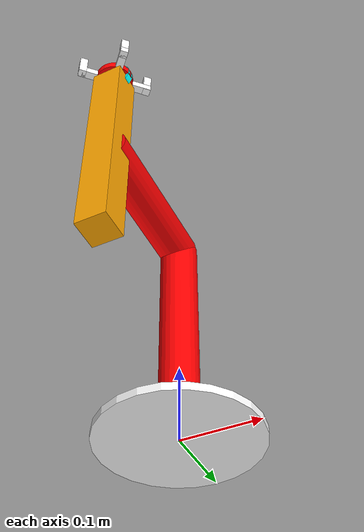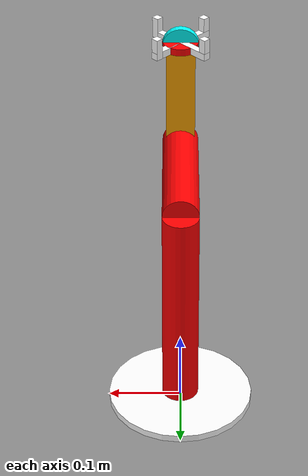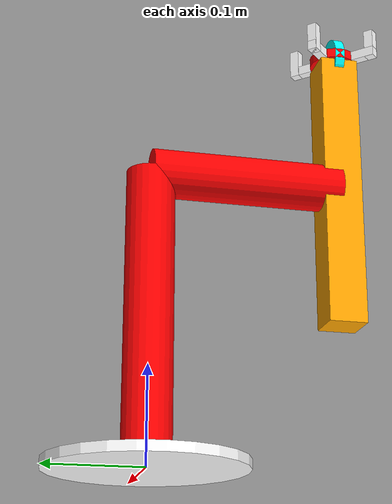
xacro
<?xml version="1.0"?>

<robot name="my_robot_arm" xmlns:xacro="http://www.ros.org/wiki/xacro">

    <xacro:include filename="$(find my_robot_arm)/urdf/links_joints.xacro"/>

    <xacro:property name="h1" value=".3"/>
    <xacro:property name="d2" value=".2"/>
    <xacro:property name="d3" value=".3"/>

    <xacro:m_link_cylinder
                name="base_link"
	        origin_rpy="0 0 0"
                origin_xyz="0 0 .0025"
	        radius="0.1"
                length=".01"
                material="white"/>

    <xacro:m_joint_r
                name="base_link__link_01"
                axis_xyz="0 0 1"
                origin_rpy="0 0 0" origin_xyz="0 0 0"
                min="-3.14" max="3.14"
                parent="base_link"
                child="link_01"/>

    <xacro:m_link_cylinder
                name="link_01"
	        origin_rpy="0 0 0"
                origin_xyz="0 0 ${h1/2}"
	        radius="0.025"
                length="${h1}"
                material="red"/>

    <xacro:m_joint_r
                name="link_01__link_02"
                axis_xyz="0 0 1"
                origin_rpy="1.57 0 0" origin_xyz="0 0 ${h1}"
                min="-3.14" max="3.14"
                parent="link_01"
                child="link_02"/>

    <xacro:m_link_cylinder
                name="link_02"
	        origin_rpy="0 0 0"
                origin_xyz="0 0 ${d2/2}"
	        radius="0.025"
                length="${d2}"
                material="red"/>

    <xacro:m_joint_p
                name="link_02__link_03"
                axis_xyz="0 0 1"
                origin_rpy="-1.57 0 0" origin_xyz="0 0 ${d2}"
                min="${-d3/2 + .02}" max="${d3/2 - .02}"
                parent="link_02"
                child="link_03"/>

    <xacro:m_link_box
                name="link_03"
	        origin_rpy="0 0 0"
                origin_xyz="0 0 0"
	        size="0.04 0.04 ${d3}"
                material="orange"/>

    <xacro:m_joint_r
                name="link_03__link_04"
                axis_xyz="0 0 1"
                origin_rpy="0 0 0" origin_xyz="0 0 ${d3/2}"
                min="-3.14" max="3.14"
                parent="link_03"
                child="link_04"/>

    <xacro:m_link_cylinder
                name="link_04"
	        origin_rpy="0 0 0"
                origin_xyz="0 0 0"
	        radius="0.025"
                length="0.01"
                material="red"/>

    <xacro:m_joint_r
                name="link_04__link_05"
                axis_xyz="0 0 1"
                origin_rpy="1.57 0 0" origin_xyz="0 0 0"
                min="-0.35" max="0.35"
                parent="link_04"
                child="link_05"/>

    <xacro:m_link_cylinder
                name="link_05"
	        origin_rpy="0 0 0"
                origin_xyz="0 0 0"
	        radius="0.025"
                length="0.01"
                material="cyan"/>

    <xacro:m_joint_r
                name="link_05__gripper"
                axis_xyz="0 0 1"
                origin_rpy="-1.57 0 0" origin_xyz="0 0 0"
                min="-3.14" max="3.14"
                parent="link_05"
                child="link_gripper"/>

    <xacro:gripper_dh
                name="link_gripper"
                material="white"/>

</robot>

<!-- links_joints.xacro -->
<robot name="my_robot_arm_macros" xmlns:xacro="http://www.ros.org/wiki/xacro">

    <xacro:macro name="m_joint_r" params="name min max axis_xyz origin_rpy origin_xyz parent child">
        <joint name="${name}" type="revolute">
            <axis xyz="${axis_xyz}"/>
            <limit effort="1000.0" lower="${min}" upper="${max}" velocity="0.5"/>
            <origin rpy="${origin_rpy}" xyz="${origin_xyz}"/>
            <parent link="${parent}"/>
            <child link="${child}"/>
        </joint>
    </xacro:macro>

    <xacro:macro name="m_joint_p" params="name min max axis_xyz origin_rpy origin_xyz parent child">
        <joint name="${name}" type="prismatic">
            <axis xyz="${axis_xyz}"/>
            <limit effort="1000.0" lower="${min}" upper="${max}" velocity="0.1"/>
            <origin rpy="${origin_rpy}" xyz="${origin_xyz}"/>
            <parent link="${parent}"/>
            <child link="${child}"/>
        </joint>
    </xacro:macro>

    <xacro:macro name="m_link_cylinder" params="name origin_rpy origin_xyz radius length material">
        <link name="${name}">
            <visual>
                <origin rpy="${origin_rpy}" xyz="${origin_xyz}"/>
                <material name="${material}"/>
                <geometry>
                    <cylinder radius="${radius}" length="${length}"/>
                </geometry>
            </visual>
        </link>
    </xacro:macro>

    <xacro:macro name="m_link_box" params="name origin_rpy origin_xyz size material">
        <link name="${name}">
            <visual>
                <origin rpy="${origin_rpy}" xyz="${origin_xyz}"/>
                <material name="${material}"/>
                <geometry>
	            <box size="${size}"/>
                </geometry>
            </visual>
        </link>
    </xacro:macro>

    <xacro:macro name="gripper_dh" params="name material">
        <link name="${name}">
            <visual>
                <origin rpy="0 0 .78" xyz="0 0 0"/>
                <material name="${material}"/>
                <geometry>
                    <box size="0.01 0.1 0.01"/>
                </geometry>
            </visual>
            <visual>
                <origin rpy="0 0 .78" xyz="0 0 0"/>
                <material name="${material}"/>
                <geometry>
                    <box size="0.1 0.01 0.01"/>
                </geometry>
            </visual>
            <visual>
                <origin rpy="0 0 .78" xyz=".0318 -.0318 0.01"/>
                <material name="${material}"/>
                <geometry>
                    <box size="0.01 0.01 0.03"/>
                </geometry>
            </visual>
            <visual>
                <origin rpy="0 0 .78" xyz="-.0318 .0318 0.01"/>
                <material name="${material}"/>
                <geometry>
                    <box size="0.01 0.01 0.03"/>
                </geometry>
            </visual>
            <visual>
                <origin rpy="0 0 .78" xyz=".0318 .0318 0.01"/>
                <material name="${material}"/>
                <geometry>
                    <box size="0.01 0.01 0.03"/>
                </geometry>
            </visual>
            <visual>
                <origin rpy="0 0 .78" xyz="-.0318 -.0318 0.01"/>
                <material name="${material}"/>
                <geometry>
                    <box size="0.01 0.01 0.03"/>
                </geometry>
            </visual>
        </link>
    </xacro:macro>

    <xacro:macro name="gripper" params="name material">
        <link name="${name}">
            <visual>
                <origin rpy="0 0 .78" xyz="0 0 0"/>
                <material name="${material}"/>
                <geometry>
                    <box size="0.01 0.1 0.01"/>
                </geometry>
            </visual>
            <visual>
                <origin rpy="0 0 .78" xyz="0 0 0"/>
                <material name="${material}"/>
                <geometry>
                    <box size="0.1 0.01 0.01"/>
                </geometry>
            </visual>
            <visual>
                <origin rpy="0 0 .78" xyz=".0318 -.0318 -0.02"/>
                <material name="${material}"/>
                <geometry>
                    <box size="0.01 0.01 0.03"/>
                </geometry>
            </visual>
            <visual>
                <origin rpy="0 0 .78" xyz="-.0318 .0318 -0.02"/>
                <material name="${material}"/>
                <geometry>
                    <box size="0.01 0.01 0.03"/>
                </geometry>
            </visual>
            <visual>
                <origin rpy="0 0 .78" xyz=".0318 .0318 -0.02"/>
                <material name="${material}"/>
                <geometry>
                    <box size="0.01 0.01 0.03"/>
                </geometry>
            </visual>
            <visual>
                <origin rpy="0 0 .78" xyz="-.0318 -.0318 -0.02"/>
                <material name="${material}"/>
                <geometry>
                    <box size="0.01 0.01 0.03"/>
                </geometry>
            </visual>
        </link>
    </xacro:macro>
    <material name="white">
        <color rgba="1 1 1 1"/>
    </material>

    <material name="red">
        <color rgba="1 0 0 1"/>
    </material>

    <material name="orange">
        <color rgba="1 .65 0 1"/>
    </material>

    <material name="cyan">
        <color rgba="0 1 1 1"/>
    </material>

    <material name="yellow">
        <color rgba="1 1 0 1"/>
    </material>
</robot>
